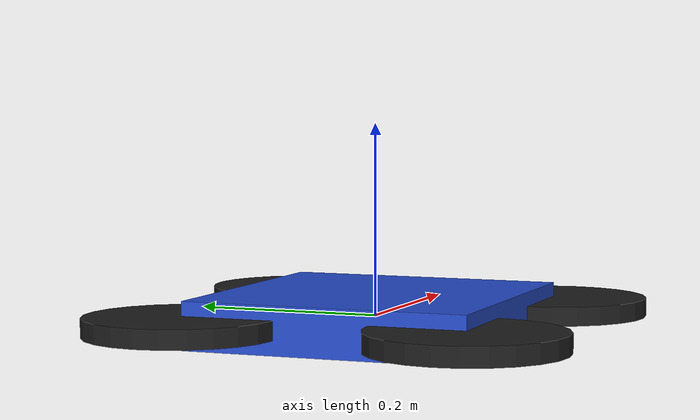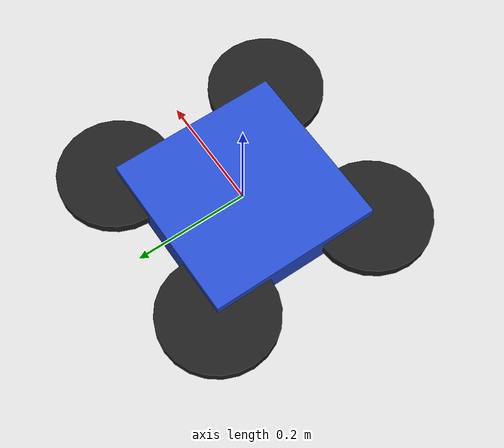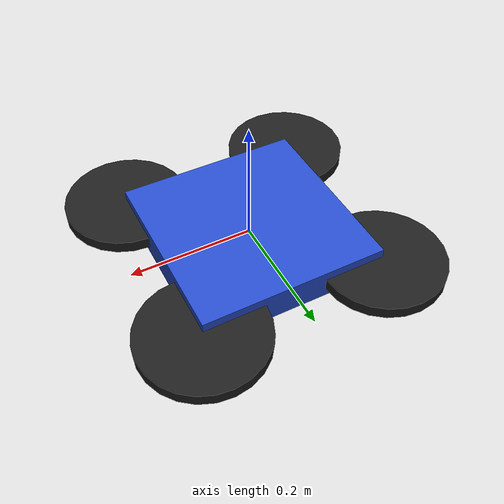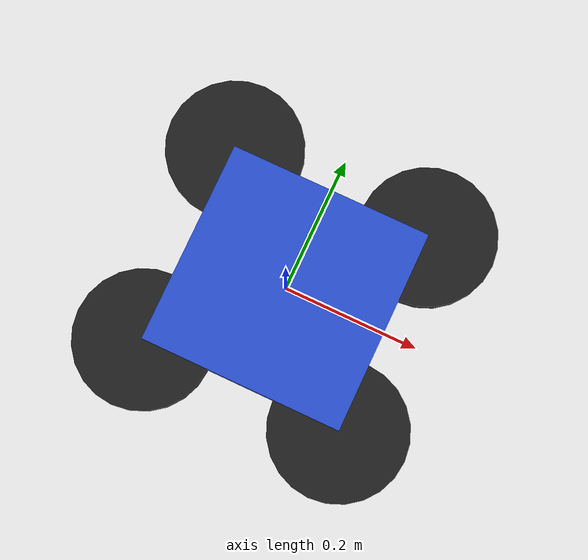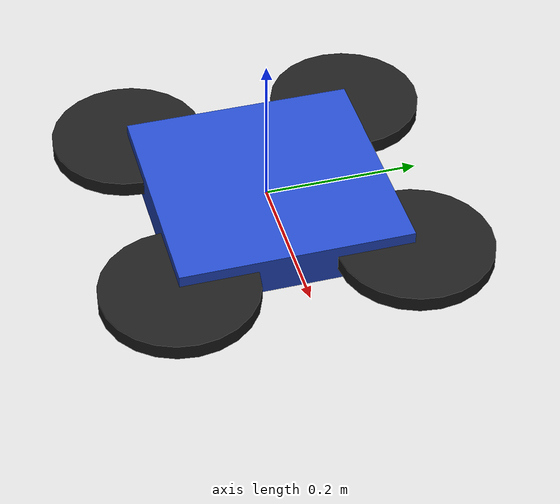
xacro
<?xml version="1.0"?>
<robot name="quadrotor" xmlns:xacro="http://www.ros.org/wiki/xacro">

  <xacro:property name="mass" value="1.0"/>
  <xacro:property name="rotor_radius" value="0.1"/>

  <!-- Body -->
  <link name="base_link">
    <inertial>
      <mass value="${mass}"/>
      <origin xyz="0 0 0" rpy="0 0 0"/>
      <inertia ixx="0.01" iyy="0.01" izz="0.02"
               ixy="0.0" ixz="0.0" iyz="0.0"/>
    </inertial>
    <visual>
      <geometry>
        <box size="0.3 0.3 0.05"/>
      </geometry>
      <material name="blue"/>
    </visual>
    <collision>
      <geometry>
        <box size="0.3 0.3 0.05"/>
      </geometry>
      <surface>
        <friction>
          <ode>
            <mu>0.1</mu>
            <mu2>0.1</mu2>
            <slip1>0.0</slip1>
            <slip2>0.0</slip2>
          </ode>
        </friction>
        <contact>
          <ode>
            <min_depth>0.001</min_depth>
            <max_vel>0.0</max_vel>
          </ode>
        </contact>
      </surface>
    </collision>
  </link>

  <!-- Add rotors as links with continuous joints -->
  <xacro:macro name="rotor" params="name xyz">
    <link name="${name}_link">
      <inertial>
        <mass value="0.01"/> <!-- Small mass for rotor -->
        <origin xyz="0 0 0" rpy="0 0 0"/>
        <inertia ixx="0.0001" iyy="0.0001" izz="0.0002" ixy="0.0" ixz="0.0" iyz="0.0"/>
      </inertial>
      <visual>
        <geometry>
          <cylinder length="0.02" radius="${rotor_radius}"/>
        </geometry>
        <material name="black"/>
      </visual>
    </link>
    <joint name="${name}_joint" type="continuous">
      <origin xyz="${xyz}" rpy="0 0 0"/>
      <parent link="base_link"/>
      <child link="${name}_link"/>
      <axis xyz="0 0 1"/>
      <limit effort="2.0" velocity="1500"/>
    </joint>
  </xacro:macro>

  <xacro:rotor name="rotor1" xyz="0.15 0.15 0"/>
  <xacro:rotor name="rotor2" xyz="-0.15 0.15 0"/>
  <xacro:rotor name="rotor3" xyz="-0.15 -0.15 0"/>
  <xacro:rotor name="rotor4" xyz="0.15 -0.15 0"/>

  <transmission name="rotor1_trans">
    <type>transmission_interface/SimpleTransmission</type>
    <joint name="rotor1_joint">
      <hardwareInterface>hardware_interface/EffortJointInterface</hardwareInterface>
    </joint>
    <actuator name="rotor1_motor">
      <hardwareInterface>hardware_interface/EffortJointInterface</hardwareInterface>
      <mechanicalReduction>1</mechanicalReduction>
    </actuator>
  </transmission>

  <transmission name="rotor2_trans">
    <type>transmission_interface/SimpleTransmission</type>
    <joint name="rotor2_joint">
      <hardwareInterface>hardware_interface/EffortJointInterface</hardwareInterface>
    </joint>
    <actuator name="rotor2_motor">
      <hardwareInterface>hardware_interface/EffortJointInterface</hardwareInterface>
      <mechanicalReduction>1</mechanicalReduction>
    </actuator>
  </transmission>

  <transmission name="rotor3_trans">
    <type>transmission_interface/SimpleTransmission</type>
    <joint name="rotor3_joint">
      <hardwareInterface>hardware_interface/EffortJointInterface</hardwareInterface>
    </joint>
    <actuator name="rotor3_motor">
      <hardwareInterface>hardware_interface/EffortJointInterface</hardwareInterface>
      <mechanicalReduction>1</mechanicalReduction>
    </actuator>
  </transmission>

  <transmission name="rotor4_trans">
    <type>transmission_interface/SimpleTransmission</type>
    <joint name="rotor4_joint">
      <hardwareInterface>hardware_interface/EffortJointInterface</hardwareInterface>
    </joint>
    <actuator name="rotor4_motor">
      <hardwareInterface>hardware_interface/EffortJointInterface</hardwareInterface>
      <mechanicalReduction>1</mechanicalReduction>
    </actuator>
  </transmission>

  <gazebo reference="base_link">
    <material>Gazebo/Blue</material>
  </gazebo>
  <!-- Materials for rotors -->
  <gazebo reference="rotor1_link">
    <material>Gazebo/Black</material>
  </gazebo>
  <gazebo reference="rotor2_link">
    <material>Gazebo/Black</material>
  </gazebo>
  <gazebo reference="rotor3_link">
    <material>Gazebo/Black</material>
  </gazebo>
  <gazebo reference="rotor4_link">
    <material>Gazebo/Black</material>
  </gazebo>

  <!-- Hector quadrotor aerodynamics plugin -->
  <gazebo>
    <plugin name="quadrotor_propulsion" filename="libhector_gazebo_quadrotor_aerodynamics.so">
      <robotNamespace>/quadrotor</robotNamespace>
      <bodyName>base_link</bodyName>
      <rotorVelocitySlowdownSim>1</rotorVelocitySlowdownSim>
      <motorConstant>0.00000245</motorConstant> <!-- Matches kt from ThrustCalculator -->
      <momentConstant>0.05</momentConstant> <!-- Torque coefficient, adjust as needed -->
      <timeConstantUp>0.0125</timeConstantUp> <!-- Motor response time (s) -->
      <timeConstantDown>0.025</timeConstantDown>
      <maxRotVelocity>1500</maxRotVelocity> <!-- Matches URDF limit -->
      <rotors>
        <rotor joint="rotor1_joint" direction="ccw" position="0.15 0.15 0"/>
        <rotor joint="rotor2_joint" direction="cw" position="-0.15 0.15 0"/>
        <rotor joint="rotor3_joint" direction="ccw" position="-0.15 -0.15 0"/>
        <rotor joint="rotor4_joint" direction="cw" position="0.15 -0.15 0"/>
      </rotors>
    </plugin>
  </gazebo>

  <!-- Gazebo ROS control plugin -->
  <gazebo>
    <plugin name="gazebo_ros_control" filename="libgazebo_ros_control.so">
      <robotNamespace>/quadrotor</robotNamespace>
      <robotSimType>gazebo_ros_control/DefaultRobotHWSim</robotSimType>
      <verbose>true</verbose>
    </plugin>
  </gazebo>

</robot>
